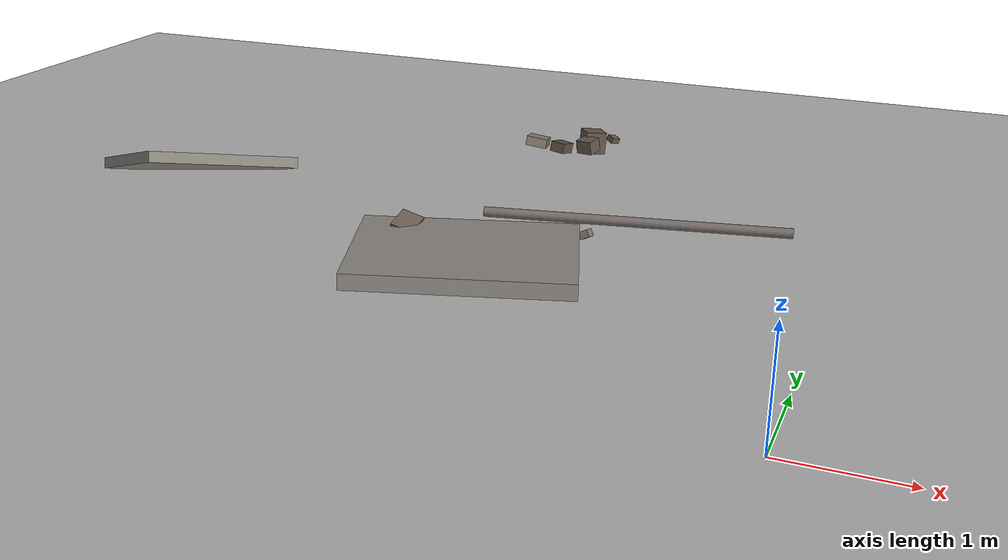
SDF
<sdf version="1.6">
 <world name="earthquake_disaster">
  <model name="ground_plane">
   <static>true</static>
   <pose>0 0 -0.05 0 0 0</pose>
   <link name="link">
    <collision name="col">
     <geometry><plane><normal>0 0 1</normal><size>25 25</size></plane></geometry>
     <surface><friction><ode><mu>2.0</mu><mu2>2.0</mu2></ode></friction></surface>
    </collision>
    <visual name="vis">
     <geometry><plane><normal>0 0 1</normal><size>25 25</size></plane></geometry>
     <material><ambient>0.7 0.7 0.7 1</ambient><diffuse>0.7 0.7 0.7 1</diffuse></material>
    </visual>
   </link>
  </model>
  <model name="slab_1">
   <static>true</static>
   <pose>-3.0 2.0 0.2820 0.0 0.0 0.3</pose>
   <link name="link">
    <collision name="col">
     <geometry><box><size>2.0 1.5 0.15</size></box></geometry>
     <surface><friction><ode><mu>2.0</mu><mu2>2.0</mu2></ode></friction></surface>
    </collision>
    <visual name="vis">
     <geometry><box><size>2.0 1.5 0.15</size></box></geometry>
     <material><ambient>0.55 0.53 0.5 1</ambient><diffuse>0.55 0.53 0.5 1</diffuse></material>
    </visual>
   </link>
  </model>
  <model name="slab_tilted_2">
   <static>true</static>
   <pose>-7.0 4.0 0.0800 -0.3 0.2 1.0</pose>
   <link name="link">
    <collision name="col">
     <geometry><box><size>1.8 1.2 0.12</size></box></geometry>
     <surface><friction><ode><mu>2.0</mu><mu2>2.0</mu2></ode></friction></surface>
    </collision>
    <visual name="vis">
     <geometry><box><size>1.8 1.2 0.12</size></box></geometry>
     <material><ambient>0.55 0.53 0.5 1</ambient><diffuse>0.55 0.53 0.5 1</diffuse></material>
    </visual>
   </link>
  </model>
  <model name="rubble_1_0">
   <static>true</static>
   <pose>-3.11427510606582 6.222295233641905 0.2108 0.08399985591245573 0.03416984626478775 2.1496887481082063</pose>
   <link name="link">
    <collision name="col">
     <geometry><box><size>0.24582535959006982 0.23397219583944887 0.24453764654154078</size></box></geometry>
     <surface><friction><ode><mu>2.0</mu><mu2>2.0</mu2></ode></friction></surface>
    </collision>
    <visual name="vis">
     <geometry><box><size>0.24582535959006982 0.23397219583944887 0.24453764654154078</size></box></geometry>
     <material>
      <ambient>0.3826804987523857 0.3326804987523857 0.28268049875238566 1</ambient>
      <diffuse>0.3826804987523857 0.3326804987523857 0.28268049875238566 1</diffuse>
     </material>
    </visual>
   </link>
  </model>
  <model name="rubble_1_1">
   <static>true</static>
   <pose>-2.9194585711226035 6.389164139521162 0.2127 0.26574582860103263 0.22582057588360133 0.9880885457072207</pose>
   <link name="link">
    <collision name="col">
     <geometry><box><size>0.10642004878080756 0.09653323785742622 0.06443642664358896</size></box></geometry>
     <surface><friction><ode><mu>2.0</mu><mu2>2.0</mu2></ode></friction></surface>
    </collision>
    <visual name="vis">
     <geometry><box><size>0.10642004878080756 0.09653323785742622 0.06443642664358896</size></box></geometry>
     <material>
      <ambient>0.4130906096118164 0.3630906096118164 0.31309060961181634 1</ambient>
      <diffuse>0.4130906096118164 0.3630906096118164 0.31309060961181634 1</diffuse>
     </material>
    </visual>
   </link>
  </model>
  <model name="rubble_1_2">
   <static>true</static>
   <pose>-3.1068718260175334 6.008796129035581 0.2167 -0.14235503488623882 0.050751594134124334 2.819163854511778</pose>
   <link name="link">
    <collision name="col">
     <geometry><box><size>0.19177037051747975 0.17233463582609493 0.14971207280132673</size></box></geometry>
     <surface><friction><ode><mu>2.0</mu><mu2>2.0</mu2></ode></friction></surface>
    </collision>
    <visual name="vis">
     <geometry><box><size>0.19177037051747975 0.17233463582609493 0.14971207280132673</size></box></geometry>
     <material>
      <ambient>0.4029760332996105 0.3529760332996105 0.30297603329961054 1</ambient>
      <diffuse>0.4029760332996105 0.3529760332996105 0.30297603329961054 1</diffuse>
     </material>
    </visual>
   </link>
  </model>
  <model name="rubble_1_3">
   <static>true</static>
   <pose>-3.362909986172016 5.8324849871322 0.2167 0.076467625021854 0.17524761861777843 1.325582295751008</pose>
   <link name="link">
    <collision name="col">
     <geometry><box><size>0.20190525873529291 0.16532942457655442 0.11202199738442131</size></box></geometry>
     <surface><friction><ode><mu>2.0</mu><mu2>2.0</mu2></ode></friction></surface>
    </collision>
    <visual name="vis">
     <geometry><box><size>0.20190525873529291 0.16532942457655442 0.11202199738442131</size></box></geometry>
     <material>
      <ambient>0.36818188243475874 0.31818188243475876 0.2681818824347587 1</ambient>
      <diffuse>0.36818188243475874 0.31818188243475876 0.2681818824347587 1</diffuse>
     </material>
    </visual>
   </link>
  </model>
  <model name="rubble_1_4">
   <static>true</static>
   <pose>-3.698782785160456 5.994783514481453 0.2049 0.13243309161611677 0.10902622141594487 1.6860868374836169</pose>
   <link name="link">
    <collision name="col">
     <geometry><box><size>0.20582286901982738 0.23552555437903677 0.10409296294768905</size></box></geometry>
     <surface><friction><ode><mu>2.0</mu><mu2>2.0</mu2></ode></friction></surface>
    </collision>
    <visual name="vis">
     <geometry><box><size>0.20582286901982738 0.23552555437903677 0.10409296294768905</size></box></geometry>
     <material>
      <ambient>0.5442156755227237 0.49421567552272366 0.4442156755227237 1</ambient>
      <diffuse>0.5442156755227237 0.49421567552272366 0.4442156755227237 1</diffuse>
     </material>
    </visual>
   </link>
  </model>
  <model name="rubble_2_1">
   <static>true</static>
   <pose>-3.4660025492157684 2.1124146749833175 0.2618 0.01821220331710649 -0.2996568623232339 1.0178500189946735</pose>
   <link name="link">
    <collision name="col">
     <geometry><box><size>0.13056785370992696 0.1326245078874862 0.11611572093321863</size></box></geometry>
     <surface><friction><ode><mu>2.0</mu><mu2>2.0</mu2></ode></friction></surface>
    </collision>
    <visual name="vis">
     <geometry><box><size>0.13056785370992696 0.1326245078874862 0.11611572093321863</size></box></geometry>
     <material>
      <ambient>0.5025021600150303 0.45250216001503035 0.40250216001503036 1</ambient>
      <diffuse>0.5025021600150303 0.45250216001503035 0.40250216001503036 1</diffuse>
     </material>
    </visual>
   </link>
  </model>
  <model name="rubble_2_2">
   <static>true</static>
   <pose>-3.744970598278569 2.402563796381929 0.2676 0.2681696671787965 -0.24860792875927273 1.5260100548141673</pose>
   <link name="link">
    <collision name="col">
     <geometry><box><size>0.2663331058722359 0.21923744049801408 0.25008806470694256</size></box></geometry>
     <surface><friction><ode><mu>2.0</mu><mu2>2.0</mu2></ode></friction></surface>
    </collision>
    <visual name="vis">
     <geometry><box><size>0.2663331058722359 0.21923744049801408 0.25008806470694256</size></box></geometry>
     <material>
      <ambient>0.41150282508053226 0.3615028250805323 0.3115028250805323 1</ambient>
      <diffuse>0.41150282508053226 0.3615028250805323 0.3115028250805323 1</diffuse>
     </material>
    </visual>
   </link>
  </model>
  <model name="rubble_2_3">
   <static>true</static>
   <pose>-3.6952348221960176 2.2340673453745437 0.2676 0.2234598246511545 -0.046117235879467866 0.6650463650881376</pose>
   <link name="link">
    <collision name="col">
     <geometry><box><size>0.12567829289995255 0.12818198514424364 0.07949507877347767</size></box></geometry>
     <surface><friction><ode><mu>2.0</mu><mu2>2.0</mu2></ode></friction></surface>
    </collision>
    <visual name="vis">
     <geometry><box><size>0.12567829289995255 0.12818198514424364 0.07949507877347767</size></box></geometry>
     <material>
      <ambient>0.44505647561974626 0.3950564756197463 0.3450564756197463 1</ambient>
      <diffuse>0.44505647561974626 0.3950564756197463 0.3450564756197463 1</diffuse>
     </material>
    </visual>
   </link>
  </model>
  <model name="rubble_2_4">
   <static>true</static>
   <pose>-3.225151251884943 2.2033962492072883 0.2559 0.010545504621354396 -0.22739748247904057 0.7055496382790901</pose>
   <link name="link">
    <collision name="col">
     <geometry><box><size>0.16234325826017898 0.17207593514773728 0.1167329266634587</size></box></geometry>
     <surface><friction><ode><mu>2.0</mu><mu2>2.0</mu2></ode></friction></surface>
    </collision>
    <visual name="vis">
     <geometry><box><size>0.16234325826017898 0.17207593514773728 0.1167329266634587</size></box></geometry>
     <material>
      <ambient>0.549029871332179 0.49902987133217896 0.449029871332179 1</ambient>
      <diffuse>0.549029871332179 0.49902987133217896 0.449029871332179 1</diffuse>
     </material>
    </visual>
   </link>
  </model>
  <model name="beam_1">
   <static>true</static>
   <pose>-2.0 4.0 0.0933 0.0 1.57 0.2</pose>
   <link name="link">
    <collision name="col">
     <geometry><cylinder><radius>0.05</radius><length>3.0</length></cylinder></geometry>
     <surface><friction><ode><mu>1.5</mu><mu2>1.5</mu2></ode></friction></surface>
    </collision>
    <visual name="vis">
     <geometry><cylinder><radius>0.05</radius><length>3.0</length></cylinder></geometry>
     <material><ambient>0.45 0.42 0.4 1</ambient><diffuse>0.45 0.42 0.4 1</diffuse></material>
    </visual>
   </link>
  </model>
  <model name="dynamic_debris_0">
   <static>false</static>
   <pose>-2.2058736447377516 3.022373908972826 0.2618 0.22914276130929306 0.4992272204272212 3.1277428462649968</pose>
   <link name="link">
    <collision name="col">
     <geometry><box><size>0.08870517373917888 0.10644620848701465 0.07096413899134311</size></box></geometry>
     <surface><friction><ode><mu>1.5</mu><mu2>1.5</mu2></ode></friction></surface>
    </collision>
    <visual name="vis">
     <geometry><box><size>0.08870517373917888 0.10644620848701465 0.07096413899134311</size></box></geometry>
     <material><ambient>0.5 0.45 0.4 1</ambient><diffuse>0.5 0.45 0.4 1</diffuse></material>
    </visual>
   </link>
  </model>
 </world>
</sdf>
